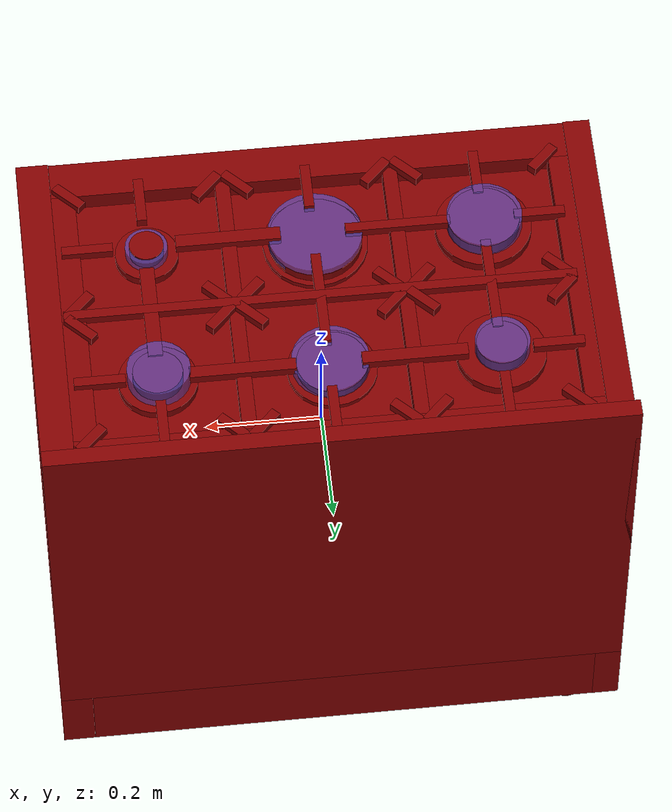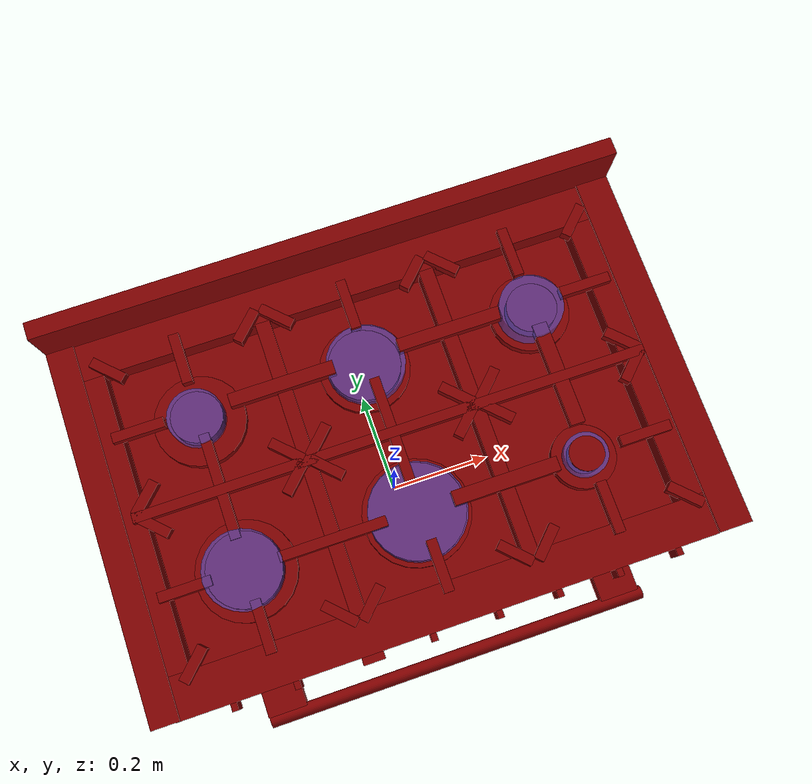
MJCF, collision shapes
<?xml version='1.0' encoding='UTF-8'?>
<mujoco model="model">
  <compiler angle="radian"/>
  <asset>
    <mesh file="visuals/knob_front_center.obj" name="knob_front_center_vis"/>
    <mesh file="visuals/knob_front_left.obj" name="knob_front_left_vis"/>
    <mesh file="visuals/knob_front_right.obj" name="knob_front_right_vis"/>
    <mesh file="visuals/knob_rear_center.obj" name="knob_rear_center_vis"/>
    <mesh file="visuals/knob_rear_left.obj" name="knob_rear_left_vis"/>
    <mesh file="visuals/knob_rear_right.obj" name="knob_rear_right_vis"/>
    <mesh file="visuals/Body001.obj" name="Body001_vis"/>
    <mesh file="visuals/Door001.obj" name="Door001_vis"/>
    <mesh file="visuals/Door001_Clear.obj" name="Door001_Clear_vis"/>
    <mesh file="visuals/Knob001.obj" name="Knob001_vis"/>
    <mesh file="visuals/Knob002.obj" name="Knob002_vis"/>
    <mesh file="visuals/Shelf001.obj" name="Shelf001_vis"/>
    <texture file="visuals/T_BC001.png" name="Body001_material" type="2d"/>
    <material name="Body001_material" rgba="1 1 1 1.0" texture="Body001_material" shininess="0.5" specular="1.5"/>
    <texture file="visuals/T_BC001.png" name="knob_front_center_material" type="2d"/>
    <material name="knob_front_center_material" rgba="1 1 1 1.0" texture="knob_front_center_material" shininess="0.5" specular="2"/>
    <texture file="visuals/T_BC001.png" name="knob_front_left_material" type="2d"/>
    <material name="knob_front_left_material" rgba="1 1 1 1.0" texture="knob_front_left_material" shininess="0.5" specular="2"/>
    <texture file="visuals/T_BC001.png" name="knob_front_right_material" type="2d"/>
    <material name="knob_front_right_material" rgba="1 1 1 1.0" texture="knob_front_right_material" shininess="0.5" specular="2"/>
    <texture file="visuals/T_BC001.png" name="knob_rear_center_material" type="2d"/>
    <material name="knob_rear_center_material" rgba="1 1 1 1.0" texture="knob_rear_center_material" shininess="0.5" specular="2"/>
    <texture file="visuals/T_BC001.png" name="knob_rear_left_material" type="2d"/>
    <material name="knob_rear_left_material" rgba="1 1 1 1.0" texture="knob_rear_left_material" shininess="0.5" specular="2"/>
    <texture file="visuals/T_BC001.png" name="knob_rear_right_material" type="2d"/>
    <material name="knob_rear_right_material" rgba="1 1 1 1.0" texture="knob_rear_right_material" shininess="0.5" specular="2"/>
    <texture file="visuals/T_BC001.png" name="Door001_material" type="2d"/>
    <material name="Door001_material" rgba="1 1 1 1.0" texture="Door001_material" shininess="0.5" specular="1"/>
    <material name="Door001_Clear_material" rgba="0.3485074043273926 0.3485074043273926 0.3485074043273926 0.5" shininess="0.5" specular="0.3103448502657381"/>
    <texture file="visuals/T_BC001.png" name="Knob001_material" type="2d"/>
    <material name="Knob001_material" rgba="1 1 1 1.0" texture="Knob001_material" shininess="0.5" specular="2"/>
    <texture file="visuals/T_BC001.png" name="Knob002_material" type="2d"/>
    <material name="Knob002_material" rgba="1 1 1 1.0" texture="Knob002_material" shininess="0.5" specular="2"/>
    <texture file="visuals/T_BC001.png" name="Shelf001_material" type="2d"/>
    <material name="Shelf001_material" rgba="1 1 1 1.0" texture="Shelf001_material" shininess="0.5" specular="2"/>
  </asset>
  <default>
    <default class="visual">
      <geom conaffinity="0" contype="0" group="1" type="mesh"/>
    </default>
    <default class="collision">
      <geom group="0" rgba="0.5 0 0 0.5"/>
    </default>
    <default class="spawn">
      <geom group="0" rgba="1 1 1 0.5" contype="0" conaffinity="0"/>
      <site group="0" rgba="1 1 1 0.5"/>
    </default>
    <default class="region">
      <geom group="1" conaffinity="0" contype="0" rgba="0 1 0 0"/>
    </default>
  </default>
  <worldbody>
    <body>
      <body name="object">
        <site type="cylinder" rgba="0.3 0.4 1 0.5" size="0.045871008187532425 0.013815520331263542" pos="-0.286249 0.146158 0.397564" name="burner_on_rear_left"/>
        <site type="cylinder" rgba="0.3 0.4 1 0.5" size="0.06383007019758224 0.013815520331263542" pos="-0.286719 -0.110187 0.396464" name="burner_on_front_left"/>
        <site type="cylinder" rgba="0.3 0.4 1 0.5" size="0.035795263946056366 0.010543806478381157" pos="0.283868 -0.110335 0.389359" name="burner_on_front_right"/>
        <site type="cylinder" rgba="0.3 0.4 1 0.5" size="0.052925318479537964 0.018182458356022835" pos="0.284603 0.146193 0.396892" name="burner_on_rear_right"/>
        <site type="cylinder" rgba="0.3 0.4 1 0.5" size="0.07991979271173477 0.010543806478381157" pos="-0.000364 -0.110209 0.389359" name="burner_on_front_center"/>
        <site type="cylinder" rgba="0.3 0.4 1 0.5" size="0.0651245266199112 0.010543806478381157" pos="-0.000229 0.146359 0.389359" name="burner_on_rear_center"/>
        <geom mesh="Body001_vis" type="mesh" solimp="0.998 0.998 0.001" solref="0.001 1" density="100" friction="0.95 0.3 0.1" class="visual" material="Body001_material"/>
        <geom class="collision" type="box" pos="-0.465576 0.030373 -0.007222" size="0.02281191758811474 0.32583460211753845 0.40695932507514954" quat="1.0 0.0 0.0 0.0"/>
        <geom class="collision" type="box" pos="0.462853 0.030375 -0.007222" size="0.027301255613565445 0.32582736015319824 0.40693792700767517" quat="1.0 0.0 0.0 0.0"/>
        <geom class="collision" type="box" pos="-0.007828 0.030289 -0.343044" size="0.4429432153701782 0.32591354846954346 0.07090509682893753" quat="1.0 0.0 0.0 0.0"/>
        <geom class="collision" type="box" pos="0.000883 0.341562 0.095813" size="0.4892715811729431 0.014645854011178017 0.3746751844882965" quat="1.0 0.0 0.0 0.0"/>
        <geom class="collision" type="box" pos="-0.007828 0.030938 0.301078" size="0.44297242164611816 0.30182188749313354 0.061493270099163055" quat="1.0 0.0 0.0 0.0"/>
        <geom class="collision" type="box" pos="-0.007828 -0.261878 0.371255" size="0.44295358657836914 0.034286003559827805 0.02430732175707817" quat="1.0 0.0 0.0 0.0"/>
        <geom class="collision" type="box" pos="-0.007828 -0.261688 0.231488" size="0.4429881274700165 0.03409847617149353 0.010478483512997627" quat="1.0 0.0 0.0 0.0"/>
        <geom class="collision" type="box" pos="-0.007828 0.300878 0.371255" size="0.442954421043396 0.035997215658426285 0.02430732175707817" quat="1.0 0.0 0.0 0.0"/>
        <geom class="collision" type="box" pos="-0.435284 0.017543 0.371255" size="0.026038331910967827 0.2506503462791443 0.024305829778313637" quat="1.0 0.0 0.0 0.0"/>
        <geom class="collision" type="box" pos="0.421416 0.017543 0.371255" size="0.026038331910967827 0.250650554895401 0.024305863305926323" quat="1.0 0.0 0.0 0.0"/>
        <geom class="collision" type="box" pos="0.145393 0.017543 0.371255" size="0.012343472801148891 0.25066816806793213 0.0243085790425539" quat="1.0 0.0 0.0 0.0"/>
        <geom class="collision" type="box" pos="-0.139185 0.017543 0.371255" size="0.012343459762632847 0.2506679594516754 0.024308545514941216" quat="1.0 0.0 0.0 0.0"/>
        <geom class="collision" type="box" pos="0.003188 0.021158 0.398953" size="0.4297998249530792 0.00840801652520895 0.007894785143435001" quat="1.0 0.0 0.0 0.0"/>
        <geom class="collision" type="box" pos="0.146227 -0.110828 0.398953" size="0.0883287712931633 0.011926512233912945 0.00789455883204937" quat="1.0 0.0 0.0 0.0"/>
        <geom class="collision" type="box" pos="-0.379343 -0.109645 0.398953" size="0.04288601502776146 0.008407792076468468 0.007894523441791534" quat="1.0 0.0 0.0 0.0"/>
        <geom class="collision" type="box" pos="-0.139757 -0.109645 0.398953" size="0.0883287712931633 0.00840780045837164 0.007894600741565228" quat="1.0 0.0 0.0 0.0"/>
        <geom class="collision" type="box" pos="0.383107 -0.109645 0.398953" size="0.04288609325885773 0.008407801389694214 0.007894554175436497" quat="1.0 0.0 0.0 0.0"/>
        <geom class="collision" type="box" pos="0.146227 0.155053 0.398953" size="0.0883287712931633 0.010853624902665615 0.007894582115113735" quat="1.0 0.0 0.0 0.0"/>
        <geom class="collision" type="box" pos="-0.379343 0.155437 0.398953" size="0.042886167764663696 0.00840781070291996 0.007894554175436497" quat="1.0 0.0 0.0 0.0"/>
        <geom class="collision" type="box" pos="-0.139757 0.154772 0.398953" size="0.0883287712931633 0.011325187049806118 0.007894624955952168" quat="1.0 0.0 0.0 0.0"/>
        <geom class="collision" type="box" pos="0.383107 0.155437 0.398953" size="0.042886242270469666 0.008407819084823132 0.00789456907659769" quat="1.0 0.0 0.0 0.0"/>
        <geom class="collision" type="box" pos="-0.282329 0.248352 0.398953" size="0.008407678455114365 0.04288633167743683 0.00789457093924284" quat="1.0 0.0 0.0 0.0"/>
        <geom class="collision" type="box" pos="-0.282329 0.027268 0.398953" size="0.00840795412659645 0.08832675963640213 0.007894625887274742" quat="1.0 0.0 0.0 0.0"/>
        <geom class="collision" type="box" pos="-0.282329 -0.202560 0.398953" size="0.008407698012888432 0.0428864061832428 0.007894585840404034" quat="1.0 0.0 0.0 0.0"/>
        <geom class="collision" type="box" pos="0.003795 0.248352 0.398953" size="0.008407707326114178 0.042886439710855484 0.007894594222307205" quat="1.0 0.0 0.0 0.0"/>
        <geom class="collision" type="box" pos="0.003795 0.027268 0.398953" size="0.00840795412659645 0.08832697570323944 0.007894644513726234" quat="1.0 0.0 0.0 0.0"/>
        <geom class="collision" type="box" pos="0.003795 -0.202560 0.398953" size="0.00840772595256567 0.04288651421666145 0.007894609123468399" quat="1.0 0.0 0.0 0.0"/>
        <geom class="collision" type="box" pos="0.286639 0.248352 0.398953" size="0.008407735265791416 0.04288654774427414 0.007894616574048996" quat="1.0 0.0 0.0 0.0"/>
        <geom class="collision" type="box" pos="0.287244 0.027268 0.398953" size="0.012256301939487457 0.08832719177007675 0.00789463147521019" quat="1.0 0.0 0.0 0.0"/>
        <geom class="collision" type="box" pos="0.286639 -0.202560 0.398953" size="0.008407754823565483 0.04288662225008011 0.00789461750537157" quat="1.0 0.0 0.0 0.0"/>
        <geom class="collision" type="box" pos="-0.398863 0.267355 0.398953" size="0.007894790731370449 0.008407950401306152 0.02992229163646698" quat="0.270597904920578 -0.653281569480896 0.2705978751182556 0.6532815098762512"/>
        <geom class="collision" type="box" pos="-0.113969 0.267355 0.398953" size="0.007894790731370449 0.008407950401306152 0.02992229163646698" quat="0.270597904920578 -0.653281569480896 0.2705978751182556 0.6532815098762512"/>
        <geom class="collision" type="box" pos="0.172291 0.267355 0.398953" size="0.007894746027886868 0.008407950401306152 0.02992229163646698" quat="0.270597904920578 -0.653281569480896 0.2705978751182556 0.6532815098762512"/>
        <geom class="collision" type="box" pos="0.405945 0.267355 0.398953" size="0.007894731126725674 0.008407950401306152 0.02992229163646698" quat="0.27059808373451233 -0.653281569480896 -0.27059799432754517 -0.6532813906669617"/>
        <geom class="collision" type="box" pos="0.121051 0.267355 0.398953" size="0.007894746027886868 0.008407950401306152 0.02992229163646698" quat="0.27059808373451233 -0.653281569480896 -0.27059799432754517 -0.6532813906669617"/>
        <geom class="collision" type="box" pos="-0.165209 0.267355 0.398953" size="0.007894790731370449 0.008407950401306152 0.02992229163646698" quat="0.27059808373451233 -0.653281569480896 -0.27059799432754517 -0.6532813906669617"/>
        <geom class="collision" type="box" pos="-0.398863 0.001727 0.398953" size="0.007894790731370449 0.008407950401306152 0.02992229163646698" quat="0.270597904920578 -0.653281569480896 0.2705978751182556 0.6532815098762512"/>
        <geom class="collision" type="box" pos="-0.113969 0.001727 0.398953" size="0.007894790731370449 0.008407950401306152 0.02992229163646698" quat="0.270597904920578 -0.653281569480896 0.2705978751182556 0.6532815098762512"/>
        <geom class="collision" type="box" pos="0.172291 0.001727 0.398953" size="0.007894746027886868 0.008407950401306152 0.02992229163646698" quat="0.270597904920578 -0.653281569480896 0.2705978751182556 0.6532815098762512"/>
        <geom class="collision" type="box" pos="0.405945 0.001727 0.398953" size="0.007894731126725674 0.008407950401306152 0.02992229163646698" quat="0.27059808373451233 -0.653281569480896 -0.27059799432754517 -0.6532813906669617"/>
        <geom class="collision" type="box" pos="0.121051 0.001727 0.398953" size="0.007894746027886868 0.008407950401306152 0.02992229163646698" quat="0.27059808373451233 -0.653281569480896 -0.27059799432754517 -0.6532813906669617"/>
        <geom class="collision" type="box" pos="-0.165209 0.001727 0.398953" size="0.007894790731370449 0.008407950401306152 0.02992229163646698" quat="0.27059808373451233 -0.653281569480896 -0.27059799432754517 -0.6532813906669617"/>
        <geom class="collision" type="box" pos="0.405945 -0.222089 0.398953" size="0.007894731126725674 0.008407950401306152 0.02992229163646698" quat="0.653281569480896 0.2705981135368347 0.6532813906669617 -0.27059802412986755"/>
        <geom class="collision" type="box" pos="0.121051 -0.222089 0.398953" size="0.007894760929048061 0.008407950401306152 0.02992229163646698" quat="0.653281569480896 0.2705981135368347 0.6532813906669617 -0.27059802412986755"/>
        <geom class="collision" type="box" pos="-0.165209 -0.222089 0.398953" size="0.007894790731370449 0.008407950401306152 0.02992229163646698" quat="0.653281569480896 0.2705981135368347 0.6532813906669617 -0.27059802412986755"/>
        <geom class="collision" type="box" pos="-0.398863 -0.222089 0.398953" size="0.007894790731370449 0.008407950401306152 0.02992229163646698" quat="0.6532815098762512 0.27059823274612427 -0.6532813310623169 0.2705981433391571"/>
        <geom class="collision" type="box" pos="-0.113969 -0.222089 0.398953" size="0.007894790731370449 0.008407950401306152 0.02992229163646698" quat="0.6532815098762512 0.27059823274612427 -0.6532813310623169 0.2705981433391571"/>
        <geom class="collision" type="box" pos="0.172291 -0.222089 0.398953" size="0.007894760929048061 0.008407950401306152 0.02992229163646698" quat="0.6532815098762512 0.27059823274612427 -0.6532813310623169 0.2705981433391571"/>
        <geom class="collision" type="box" pos="0.405945 0.047091 0.398953" size="0.007894746027886868 0.008407950401306152 0.02992229163646698" quat="0.653281569480896 0.2705981135368347 0.6532813906669617 -0.27059802412986755"/>
        <geom class="collision" type="box" pos="0.121051 0.047091 0.398953" size="0.007894731126725674 0.008407950401306152 0.02992229163646698" quat="0.653281569480896 0.2705981135368347 0.6532813906669617 -0.27059802412986755"/>
        <geom class="collision" type="box" pos="-0.165209 0.047091 0.398953" size="0.007894790731370449 0.008407950401306152 0.02992229163646698" quat="0.653281569480896 0.2705981135368347 0.6532813906669617 -0.27059802412986755"/>
        <geom class="collision" type="box" pos="-0.398863 0.047091 0.398953" size="0.007894790731370449 0.008407950401306152 0.02992229163646698" quat="0.6532815098762512 0.27059823274612427 -0.6532813310623169 0.2705981433391571"/>
        <geom class="collision" type="box" pos="-0.113969 0.047091 0.398953" size="0.007894790731370449 0.008407950401306152 0.02992229163646698" quat="0.6532815098762512 0.27059823274612427 -0.6532813310623169 0.2705981433391571"/>
        <geom class="collision" type="box" pos="0.172291 0.047091 0.398953" size="0.007894760929048061 0.008407950401306152 0.02992229163646698" quat="0.6532815098762512 0.27059823274612427 -0.6532813310623169 0.2705981433391571"/>
        <geom class="collision" type="box" pos="-0.007828 0.024111 0.215394" size="0.4429723918437958 0.28328001499176025 0.010477830655872822" quat="1.0 0.0 0.0 0.0"/>
        <geom class="collision" type="box" pos="-0.007828 0.024111 -0.258969" size="0.4429723918437958 0.28328001499176025 0.010477830655872822" quat="1.0 0.0 0.0 0.0"/>
        <geom class="collision" type="box" pos="-0.424349 0.024111 -0.022338" size="0.010477871634066105 0.28328001499176025 0.23162606358528137" quat="1.0 0.0 0.0 0.0"/>
        <geom class="collision" type="box" pos="0.423539 0.024111 -0.022338" size="0.011447538621723652 0.28328001499176025 0.23162606358528137" quat="1.0 0.0 0.0 0.0"/>
        <geom class="collision" type="box" pos="-0.002769 0.299407 -0.024966" size="0.4178180396556854 0.010477843694388866 0.2359468936920166" quat="1.0 0.0 0.0 0.0"/>
        <geom class="collision" type="cylinder" pos="-0.285052 0.146454 0.370380" size="0.07551901042461395 0.008533874526619911" quat="1.0 0.0 0.0 0.0"/>
        <geom class="collision" type="cylinder" pos="-0.002809 0.146454 0.362575" size="0.07551901042461395 0.008533874526619911" quat="1.0 0.0 0.0 0.0"/>
        <geom class="collision" type="cylinder" pos="0.286568 0.146454 0.372822" size="0.06650479882955551 0.007515241391956806" quat="1.0 0.0 0.0 0.0"/>
        <geom class="collision" type="cylinder" pos="-0.285052 -0.110117 0.370380" size="0.08158350735902786 0.009219180792570114" quat="1.0 0.0 0.0 0.0"/>
        <geom class="collision" type="cylinder" pos="-0.000669 -0.108769 0.361717" size="0.0886225476861 0.010014613159000874" quat="1.0 0.0 0.0 0.0"/>
        <geom class="collision" type="cylinder" pos="0.283628 -0.110477 0.369704" size="0.05324289947748184 0.008796552196145058" quat="1.0 0.0 0.0 0.0"/>
        <geom class="collision" type="cylinder" pos="-0.285052 -0.110117 0.391344" size="0.060808539390563965 0.011219466105103493" quat="1.0 0.0 0.0 0.0"/>
        <geom class="collision" type="cylinder" pos="-0.285052 0.146454 0.392436" size="0.042530860751867294 0.011385127902030945" quat="1.0 0.0 0.0 0.0"/>
        <geom class="collision" type="cylinder" pos="-0.002809 0.146454 0.381206" size="0.06009776145219803 0.007740130182355642" quat="1.0 0.0 0.0 0.0"/>
        <geom class="collision" type="cylinder" pos="-0.000669 -0.108769 0.379076" size="0.07909324765205383 0.00893777422606945" quat="1.0 0.0 0.0 0.0"/>
        <geom class="collision" type="cylinder" pos="0.283628 -0.110477 0.390530" size="0.028883107006549835 0.012157234363257885" quat="1.0 0.0 0.0 0.0"/>
        <geom class="collision" type="cylinder" pos="0.286568 0.146454 0.389888" size="0.0419054739177227 0.013532611541450024" quat="1.0 0.0 0.0 0.0"/>
        <geom class="collision" type="box" pos="-0.408472 0.003875 -0.001103" size="0.01244853064417839 0.20002445578575134 0.004354590084403753" quat="1.0 0.0 0.0 0.0"/>
        <geom class="collision" type="box" pos="0.408847 0.003875 -0.001103" size="0.01244853064417839 0.20002445578575134 0.004354590084403753" quat="1.0 0.0 0.0 0.0"/>
        <geom class="collision" type="cylinder" pos="-0.403637 -0.241929 -0.438970" size="0.02651587501168251 0.02479064092040062" quat="1.0 0.0 0.0 0.0"/>
        <geom class="collision" type="cylinder" pos="0.408654 -0.243430 -0.438970" size="0.02651587501168251 0.02479064092040062" quat="1.0 0.0 0.0 0.0"/>
        <geom class="collision" type="cylinder" pos="0.408654 0.301583 -0.438970" size="0.02651587501168251 0.02479064092040062" quat="1.0 0.0 0.0 0.0"/>
        <geom class="collision" type="cylinder" pos="-0.403637 0.303083 -0.438970" size="0.02651587501168251 0.02479064092040062" quat="1.0 0.0 0.0 0.0"/>
        <body name="knob_front_center">
          <joint axis="0.0 -1.0 0.0" pos="0.078752 -0.290999 0.284789" limited="true" name="knob_front_center_joint" range="0.0 3.141592653589793" type="hinge" damping="0.05" armature="0.001"/>
          <geom mesh="knob_front_center_vis" type="mesh" solimp="0.998 0.998 0.001" solref="0.001 1" density="100" friction="0.95 0.3 0.1" class="visual" material="knob_front_center_material"/>
          <geom class="collision" type="cylinder" pos="0.079250 -0.288180 0.284789" size="0.02351096272468567 0.006129719782620668" quat="0.7071068286895752 0.7071067690849304 -1.5700924318127872e-16 -5.9269340452702814e-24"/>
          <geom class="collision" type="box" pos="0.079250 -0.301823 0.284789" size="0.005404462572187185 0.009122075513005257 0.01902027055621147" quat="1.0 0.0 0.0 0.0" name="knob_front_center_main"/>
        </body>
        <body name="knob_front_left">
          <joint axis="0.0 -1.0 0.0" pos="-0.377609 -0.290999 0.284789" limited="true" name="knob_front_left_joint" range="0.0 3.141592653589793" type="hinge" damping="0.05" armature="0.001"/>
          <geom mesh="knob_front_left_vis" type="mesh" solimp="0.998 0.998 0.001" solref="0.001 1" density="100" friction="0.95 0.3 0.1" class="visual" material="knob_front_left_material"/>
          <geom class="collision" type="cylinder" pos="-0.377609 -0.288180 0.284789" size="0.02351096272468567 0.006129719782620668" quat="0.7071068286895752 0.7071067690849304 -1.5700924318127872e-16 -5.9269340452702814e-24"/>
          <geom class="collision" type="box" pos="-0.377609 -0.301823 0.284789" size="0.005404462572187185 0.009122075513005257 0.019020281732082367" quat="1.0 0.0 0.0 0.0" name="knob_front_left_main"/>
        </body>
        <body name="knob_front_right">
          <joint axis="0.0 -1.0 0.0" pos="0.397645 -0.290999 0.284789" limited="true" name="knob_front_right_joint" range="0.0 3.141592653589793" type="hinge" damping="0.05" armature="0.001"/>
          <geom mesh="knob_front_right_vis" type="mesh" solimp="0.998 0.998 0.001" solref="0.001 1" density="100" friction="0.95 0.3 0.1" class="visual" material="knob_front_right_material"/>
          <geom class="collision" type="cylinder" pos="0.397909 -0.288180 0.284789" size="0.02351096272468567 0.006129719782620668" quat="0.7071068286895752 0.7071067690849304 -1.5700924318127872e-16 -5.9269340452702814e-24"/>
          <geom class="collision" type="box" pos="0.397909 -0.301823 0.284789" size="0.005404462572187185 0.009122075513005257 0.019020291045308113" quat="1.0 0.0 0.0 0.0" name="knob_front_right_main"/>
        </body>
        <body name="knob_rear_center">
          <joint axis="0.0 -1.0 0.0" pos="0.185085 -0.290999 0.284789" limited="true" name="knob_rear_center_joint" range="0.0 3.141592653589793" type="hinge" damping="0.05" armature="0.001"/>
          <geom mesh="knob_rear_center_vis" type="mesh" solimp="0.998 0.998 0.001" solref="0.001 1" density="100" friction="0.95 0.3 0.1" class="visual" material="knob_rear_center_material"/>
          <geom class="collision" type="cylinder" pos="0.184773 -0.288180 0.284789" size="0.02351096272468567 0.006129719782620668" quat="0.7071068286895752 0.7071067690849304 -1.5700924318127872e-16 -5.9269340452702814e-24"/>
          <geom class="collision" type="box" pos="0.184773 -0.301823 0.284789" size="0.005404462572187185 0.009122075513005257 0.01902030222117901" quat="1.0 0.0 0.0 0.0" name="knob_rear_center_main"/>
        </body>
        <body name="knob_rear_left">
          <joint axis="0.0 -1.0 0.0" pos="-0.271090 -0.290999 0.284789" limited="true" name="knob_rear_left_joint" range="0.0 3.141592653589793" type="hinge" damping="0.05" armature="0.001"/>
          <geom mesh="knob_rear_left_vis" type="mesh" solimp="0.998 0.998 0.001" solref="0.001 1" density="100" friction="0.95 0.3 0.1" class="visual" material="knob_rear_left_material"/>
          <geom class="collision" type="cylinder" pos="-0.270988 -0.288180 0.284789" size="0.02351096272468567 0.006129719782620668" quat="0.7071068286895752 0.7071067690849304 -1.5700924318127872e-16 -5.9269340452702814e-24"/>
          <geom class="collision" type="box" pos="-0.270988 -0.301823 0.284789" size="0.005404462572187185 0.009122075513005257 0.019020311534404755" quat="1.0 0.0 0.0 0.0" name="knob_rear_left_main"/>
        </body>
        <body name="knob_rear_right">
          <joint axis="0.0 -1.0 0.0" pos="0.291343 -0.290999 0.284789" limited="true" name="knob_rear_right_joint" range="0.0 3.141592653589793" type="hinge" damping="0.05" armature="0.001"/>
          <geom mesh="knob_rear_right_vis" type="mesh" solimp="0.998 0.998 0.001" solref="0.001 1" density="100" friction="0.95 0.3 0.1" class="visual" material="knob_rear_right_material"/>
          <geom class="collision" type="cylinder" pos="0.291496 -0.288180 0.284789" size="0.02351096272468567 0.006129719782620668" quat="0.7071068286895752 0.7071067690849304 -1.5700924318127872e-16 -5.9269340452702814e-24"/>
          <geom class="collision" type="box" pos="0.291496 -0.301823 0.284789" size="0.005404462572187185 0.009122075513005257 0.01902032271027565" quat="1.0 0.0 0.0 0.0" name="knob_rear_right_main"/>
        </body>
        <body name="Door001">
          <joint axis="1.0 0.0 0.0" pos="-0.000528 -0.296384 -0.270393" limited="true" name="Door001_joint" range="0.0 1.5707963267948966" type="hinge" damping="1" frictionloss="1" armature=".01" stiffness="0.05"/>
          <geom mesh="Door001_vis" type="mesh" solimp="0.998 0.998 0.001" solref="0.001 1" density="100" friction="0.95 0.3 0.1" class="visual" material="Door001_material"/>
          <geom class="collision" type="box" pos="0.000000 -0.281511 -0.022519" size="0.4303256869316101 0.01450288761407137 0.22068700194358826" quat="1.0 0.0 0.0 0.0"/>
          <geom class="collision" type="box" pos="-0.313469 -0.319299 0.179285" size="0.03494257107377052 0.024839654564857483 0.011061478406190872" quat="1.0 0.0 0.0 0.0"/>
          <geom class="collision" type="box" pos="0.306819 -0.319299 0.179285" size="0.034942589700222015 0.024839669466018677 0.01106148399412632" quat="1.0 0.0 0.0 0.0"/>
          <geom class="collision" type="cylinder" pos="-0.000000 -0.350748 0.179930" size="0.011870450340211391 0.3469732999801636" quat="0.7071068286895752 -4.7503018407724085e-08 -0.7071067094802856 -4.750301130229673e-08"/>
          <body name="Door001_Clear">
            <geom mesh="Door001_Clear_vis" type="mesh" solimp="0.998 0.998 0.001" solref="0.001 1" density="100" friction="0.95 0.3 0.1" class="visual" material="Door001_Clear_material"/>
            <geom class="collision" type="box" pos="0.000000 -0.279657 -0.011890" size="0.35245248675346375 0.011737396009266376 0.18250848352909088" quat="1.0 0.0 0.0 0.0"/>
          </body>
        </body>
        <body name="Knob001">
          <joint axis="0.0 1.0 0.0" pos="-0.141599 -0.290999 0.284789" limited="true" name="Knob001_joint" range="0.0 5.235987755982989" type="hinge" damping="0.05" armature="0.001"/>
          <geom mesh="Knob001_vis" type="mesh" solimp="0.998 0.998 0.001" solref="0.001 1" density="100" friction="0.95 0.3 0.1" class="visual" material="Knob001_material"/>
          <geom class="collision" type="cylinder" pos="-0.141136 -0.288180 0.284789" size="0.02351096272468567 0.006129719782620668" quat="0.7071068286895752 0.7071067690849304 -1.5700924318127872e-16 -5.9269340452702814e-24"/>
          <geom class="collision" type="box" pos="-0.141136 -0.301823 0.284789" size="0.019020427018404007 0.00912207830697298 0.005404421128332615" quat="1.0 0.0 0.0 0.0"/>
        </body>
        <body name="Knob002">
          <joint axis="0.0 1.0 0.0" pos="-0.036059 -0.290999 0.284789" limited="true" name="Knob002_joint" range="0.0 5.585053606381854" type="hinge" damping="0.05" armature="0.001"/>
          <geom mesh="Knob002_vis" type="mesh" solimp="0.998 0.998 0.001" solref="0.001 1" density="100" friction="0.95 0.3 0.1" class="visual" material="Knob002_material"/>
          <geom class="collision" type="cylinder" pos="-0.035950 -0.288180 0.284789" size="0.02351096272468567 0.006129719782620668" quat="0.7071068286895752 0.7071067690849304 -1.5700924318127872e-16 -5.9269340452702814e-24"/>
          <geom class="collision" type="box" pos="-0.035950 -0.301823 0.284789" size="0.005404462572187185 0.009122075513005257 0.01902034319937229" quat="1.0 0.0 0.0 0.0"/>
        </body>
        <body name="Shelf001">
          <joint axis="0.0 -1.0 0.0" pos="0.001380 0.005550 0.015202" limited="true" name="Shelf001_joint" range="0.0 0.37" type="slide" damping="1" frictionloss="1" armature=".01" stiffness="0.05"/>
          <geom mesh="Shelf001_vis" type="mesh" solimp="0.998 0.998 0.001" solref="0.001 1" density="100" friction="0.95 0.3 0.1" class="visual" material="Shelf001_material"/>
          <geom class="collision" type="box" pos="0.000398 0.003875 0.014034" size="0.4045194685459137 0.2453322559595108 0.005284389015287161" quat="1.0 0.0 0.0 0.0"/>
        </body>
        <site name="burner_rear_left_place_site" type="cylinder" rgba="0.3 0.4 1 0" size="0.045871008187532425 0.013815520331263542" pos="-0.286249 0.146158 0.397564"/>
        <site name="burner_front_left_place_site" type="cylinder" rgba="0.3 0.4 1 0" size="0.06383007019758224 0.013815520331263542" pos="-0.286719 -0.110187 0.396464"/>
        <site name="burner_front_right_place_site" type="cylinder" rgba="0.3 0.4 1 0" size="0.035795263946056366 0.010543806478381157" pos="0.283868 -0.110335 0.389359"/>
        <site name="burner_rear_right_place_site" type="cylinder" rgba="0.3 0.4 1 0" size="0.052925318479537964 0.018182458356022835" pos="0.284603 0.146193 0.396892"/>
        <site name="burner_front_center_place_site" type="cylinder" rgba="0.3 0.4 1 0" size="0.07991979271173477 0.010543806478381157" pos="-0.000364 -0.110209 0.389359"/>
        <site name="burner_rear_center_place_site" type="cylinder" rgba="0.3 0.4 1 0" size="0.0651245266199112 0.010543806478381157" pos="-0.000229 0.146359 0.389359"/>
        <geom class="region" name="reg_main" type="box" pos="0.0 0.03235199999999999 -0.030309500000000017" size="0.492836 0.33 0.4371575"/>
        <geom class="region" name="reg_int" type="box" pos="0.0023304999999999854 0.01881949999999999 -0.026097499999999996" size="0.41618849999999996 0.2764875 0.2303905"/>
      </body>
    </body>
  </worldbody>
  <actuator>
    <motor name="knob_front_center_joint_actuator" joint="knob_front_center_joint" gear="10"/>
    <motor name="knob_front_left_joint_actuator" joint="knob_front_left_joint" gear="10"/>
    <motor name="knob_front_right_joint_actuator" joint="knob_front_right_joint" gear="10"/>
    <motor name="knob_rear_center_joint_actuator" joint="knob_rear_center_joint" gear="10"/>
    <motor name="knob_rear_left_joint_actuator" joint="knob_rear_left_joint" gear="10"/>
    <motor name="knob_rear_right_joint_actuator" joint="knob_rear_right_joint" gear="10"/>
    <motor name="Door001_joint_actuator" joint="Door001_joint" gear="50"/>
    <motor name="Knob001_joint_actuator" joint="Knob001_joint" gear="50"/>
    <motor name="Knob002_joint_actuator" joint="Knob002_joint" gear="50"/>
    <motor name="Shelf001_joint_actuator" joint="Shelf001_joint" gear="50"/>
  </actuator>
</mujoco>
